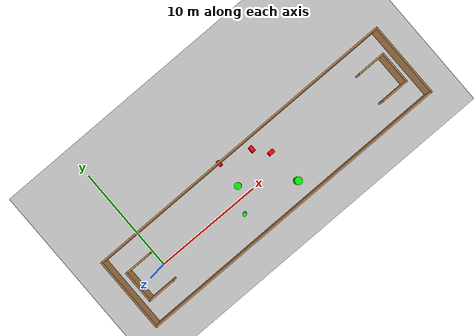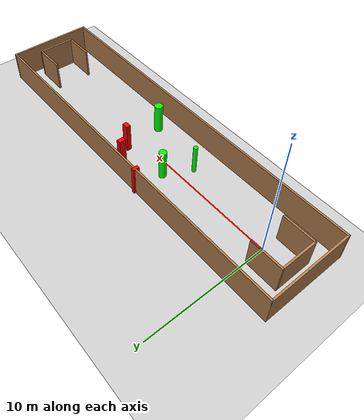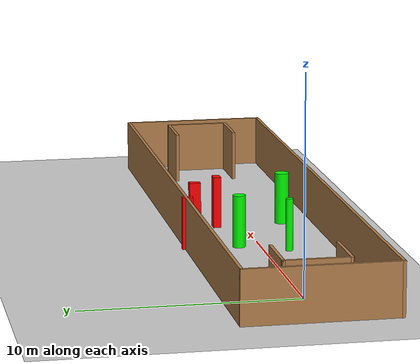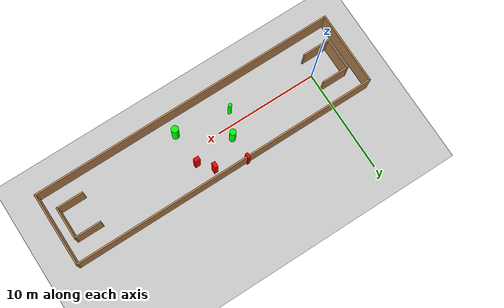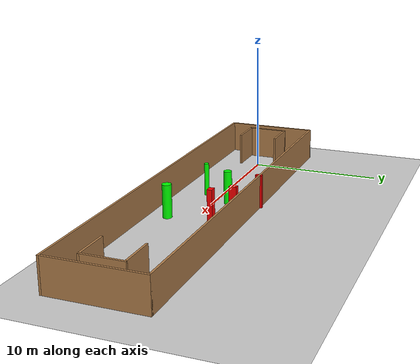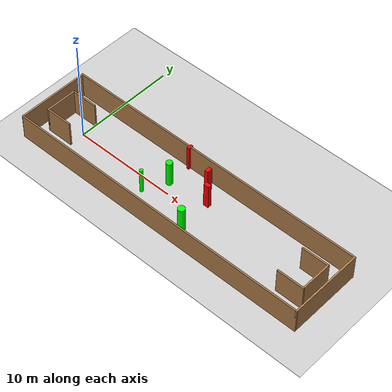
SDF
<sdf version="1.7">
 <world name="default">
  <light name="sun" type="directional">
   <pose>0 0 10 0 -0 0</pose>
   <diffuse>0.8 0.8 0.8 1</diffuse>
   <specular>0.2 0.2 0.2 1</specular>
   <attenuation>
    <range>1000</range>
    <constant>0.9</constant>
    <linear>0.01</linear>
    <quadratic>0.001</quadratic>
   </attenuation>
   <direction>-0.5 0.1 -0.9</direction>
   <spot><inner_angle>0</inner_angle><outer_angle>0</outer_angle><falloff>0</falloff></spot>
  </light>
  <model name="ground_plane">
   <static>1</static>
   <link name="link">
    <collision name="collision">
     <geometry><plane><normal>0 0 1</normal><size>100 100</size></plane></geometry>
     <surface>
      <contact><collide_bitmask>65535</collide_bitmask></contact>
      <friction><ode><mu>100</mu><mu2>50</mu2></ode></friction>
     </surface>
    </collision>
    <visual name="visual">
     <cast_shadows>0</cast_shadows>
     <geometry><plane><normal>0 0 1</normal><size>100 100</size></plane></geometry>
     <material>
      <script><uri>file://media/materials/scripts/gazebo.material</uri><name>Gazebo/Grey</name></script>
     </material>
    </visual>
   </link>
  </model>
  <gravity>0 0 -9.8</gravity>
  <magnetic_field>6e-06 2.3e-05 -4.2e-05</magnetic_field>
  <atmosphere type="adiabatic"/>
  <physics type="ode">
   <max_step_size>0.001</max_step_size>
   <real_time_factor>1</real_time_factor>
   <real_time_update_rate>1000</real_time_update_rate>
  </physics>
  <scene><ambient>0.4 0.4 0.4 1</ambient><background>0.7 0.7 0.7 1</background><shadows>1</shadows></scene>
  <spherical_coordinates>
   <surface_model>EARTH_WGS84</surface_model>
   <latitude_deg>0</latitude_deg>
   <longitude_deg>0</longitude_deg>
   <elevation>0</elevation>
   <heading_deg>0</heading_deg>
  </spherical_coordinates>
  <model name="my_base_walls">
   <link name="Wall_0">
    <collision name="Wall_0_Collision">
     <geometry><box><size>7.15 0.15 2.5</size></box></geometry>
     <pose>0 0 1.25 0 -0 0</pose>
    </collision>
    <visual name="Wall_0_Visual">
     <pose>0 0 1.25 0 -0 0</pose>
     <geometry><box><size>7.15 0.15 2.5</size></box></geometry>
     <material>
      <script><uri>file://media/materials/scripts/gazebo.material</uri><name>Gazebo/Wood</name></script>
      <ambient>1 1 1 1</ambient>
     </material>
     <meta><layer>0</layer></meta>
    </visual>
    <pose>-15 0 0 0 -0 1.5708</pose>
   </link>
   <link name="Wall_10">
    <collision name="Wall_10_Collision">
     <geometry><box><size>2.65 0.15 2.5</size></box></geometry>
     <pose>0 0 1.25 0 -0 0</pose>
    </collision>
    <visual name="Wall_10_Visual">
     <pose>0 0 1.25 0 -0 0</pose>
     <geometry><box><size>2.65 0.15 2.5</size></box></geometry>
     <material>
      <script><uri>file://media/materials/scripts/gazebo.material</uri><name>Gazebo/Wood</name></script>
      <ambient>1 1 1 1</ambient>
     </material>
     <meta><layer>0</layer></meta>
    </visual>
    <pose>-12.75 -1.5 0 0 -0 0</pose>
   </link>
   <link name="Wall_12">
    <collision name="Wall_12_Collision">
     <geometry><box><size>2.65 0.15 2.5</size></box></geometry>
     <pose>0 0 1.25 0 -0 0</pose>
    </collision>
    <visual name="Wall_12_Visual">
     <pose>0 0 1.25 0 -0 0</pose>
     <geometry><box><size>2.65 0.15 2.5</size></box></geometry>
     <material>
      <script><uri>file://media/materials/scripts/gazebo.material</uri><name>Gazebo/Wood</name></script>
      <ambient>1 1 1 1</ambient>
     </material>
     <meta><layer>0</layer></meta>
    </visual>
    <pose>-12.75 1.5 0 0 -0 0</pose>
   </link>
   <link name="Wall_14">
    <collision name="Wall_14_Collision">
     <geometry><box><size>3.15 0.15 2.5</size></box></geometry>
     <pose>0 0 1.25 0 -0 0</pose>
    </collision>
    <visual name="Wall_14_Visual">
     <pose>0 0 1.25 0 -0 0</pose>
     <geometry><box><size>3.15 0.15 2.5</size></box></geometry>
     <material>
      <script><uri>file://media/materials/scripts/gazebo.material</uri><name>Gazebo/Wood</name></script>
      <ambient>1 1 1 1</ambient>
     </material>
     <meta><layer>0</layer></meta>
    </visual>
    <pose>14 0 0 0 -0 -1.5708</pose>
   </link>
   <link name="Wall_15">
    <collision name="Wall_15_Collision">
     <geometry><box><size>2.65 0.15 2.5</size></box></geometry>
     <pose>0 0 1.25 0 -0 0</pose>
    </collision>
    <visual name="Wall_15_Visual">
     <pose>0 0 1.25 0 -0 0</pose>
     <geometry><box><size>2.65 0.15 2.5</size></box></geometry>
     <material>
      <script><uri>file://media/materials/scripts/gazebo.material</uri><name>Gazebo/Wood</name></script>
      <ambient>1 1 1 1</ambient>
     </material>
     <meta><layer>0</layer></meta>
    </visual>
    <pose>12.75 -1.5 0 0 -0 3.14159</pose>
   </link>
   <link name="Wall_17">
    <collision name="Wall_17_Collision">
     <geometry><box><size>2.65 0.15 2.5</size></box></geometry>
     <pose>0 0 1.25 0 -0 0</pose>
    </collision>
    <visual name="Wall_17_Visual">
     <pose>0 0 1.25 0 -0 0</pose>
     <geometry><box><size>2.65 0.15 2.5</size></box></geometry>
     <material>
      <script><uri>file://media/materials/scripts/gazebo.material</uri><name>Gazebo/Wood</name></script>
      <ambient>1 1 1 1</ambient>
     </material>
     <meta><layer>0</layer></meta>
    </visual>
    <pose>12.75 1.5 0 0 -0 3.14159</pose>
   </link>
   <link name="Wall_2">
    <collision name="Wall_2_Collision">
     <geometry><box><size>30.15 0.15 2.5</size></box></geometry>
     <pose>0 0 1.25 0 -0 0</pose>
    </collision>
    <visual name="Wall_2_Visual">
     <pose>0 0 1.25 0 -0 0</pose>
     <geometry><box><size>30.15 0.15 2.5</size></box></geometry>
     <material>
      <script><uri>file://media/materials/scripts/gazebo.material</uri><name>Gazebo/Wood</name></script>
      <ambient>1 1 1 1</ambient>
     </material>
     <meta><layer>0</layer></meta>
    </visual>
    <pose>-0 -3.5 0 0 -0 0</pose>
   </link>
   <link name="Wall_4">
    <collision name="Wall_4_Collision">
     <geometry><box><size>30.15 0.15 2.5</size></box></geometry>
     <pose>0 0 1.25 0 -0 0</pose>
    </collision>
    <visual name="Wall_4_Visual">
     <pose>0 0 1.25 0 -0 0</pose>
     <geometry><box><size>30.15 0.15 2.5</size></box></geometry>
     <material>
      <script><uri>file://media/materials/scripts/gazebo.material</uri><name>Gazebo/Wood</name></script>
      <ambient>1 1 1 1</ambient>
     </material>
     <meta><layer>0</layer></meta>
    </visual>
    <pose>-0 3.5 0 0 -0 0</pose>
   </link>
   <link name="Wall_6">
    <collision name="Wall_6_Collision">
     <geometry><box><size>7.15 0.15 2.5</size></box></geometry>
     <pose>0 0 1.25 0 -0 0</pose>
    </collision>
    <visual name="Wall_6_Visual">
     <pose>0 0 1.25 0 -0 0</pose>
     <geometry><box><size>7.15 0.15 2.5</size></box></geometry>
     <material>
      <script><uri>file://media/materials/scripts/gazebo.material</uri><name>Gazebo/Wood</name></script>
      <ambient>1 1 1 1</ambient>
     </material>
     <meta><layer>0</layer></meta>
    </visual>
    <pose>15 0 0 0 -0 -1.5708</pose>
   </link>
   <link name="Wall_9">
    <collision name="Wall_9_Collision">
     <geometry><box><size>3.15 0.15 2.5</size></box></geometry>
     <pose>0 0 1.25 0 -0 0</pose>
    </collision>
    <visual name="Wall_9_Visual">
     <pose>0 0 1.25 0 -0 0</pose>
     <geometry><box><size>3.15 0.15 2.5</size></box></geometry>
     <material>
      <script><uri>file://media/materials/scripts/gazebo.material</uri><name>Gazebo/Wood</name></script>
      <ambient>1 1 1 1</ambient>
     </material>
     <meta><layer>0</layer></meta>
    </visual>
    <pose>-14 0 0 0 -0 -1.5708</pose>
   </link>
   <static>1</static>
   <pose>11.5 0 0 0 -0 0</pose>
  </model>
  <model name="cylinder1">
   <static>1</static>
   <link name="link">
    <inertial>
     <mass>1</mass>
     <inertia><ixx>0.5</ixx><ixy>0</ixy><ixz>0</ixz><iyy>0.5</iyy><iyz>0</iyz><izz>1</izz></inertia>
    </inertial>
    <collision name="collision">
     <geometry><cylinder><radius>0.174413039719188</radius><length>2.5</length></cylinder></geometry>
    </collision>
    <visual name="visual">
     <geometry><cylinder><radius>0.174413039719188</radius><length>2.5</length></cylinder></geometry>
     <material>
      <ambient>0 1 0 1</ambient>
      <diffuse>0 1 0 1</diffuse>
      <specular>0.1 0.1 0.1 1</specular>
      <emissive>0 0 0 0</emissive>
     </material>
    </visual>
   </link>
   <pose>8.119852926619945 -1.1723057429183856 1.25 0 0 0</pose>
  </model>
  <model name="cylinder2">
   <static>1</static>
   <link name="link">
    <inertial>
     <mass>1</mass>
     <inertia><ixx>0.5</ixx><ixy>0</ixy><ixz>0</ixz><iyy>0.5</iyy><iyz>0</iyz><izz>1</izz></inertia>
    </inertial>
    <collision name="collision">
     <geometry><cylinder><radius>0.30246004641780777</radius><length>2.5</length></cylinder></geometry>
    </collision>
    <visual name="visual">
     <geometry><cylinder><radius>0.30246004641780777</radius><length>2.5</length></cylinder></geometry>
     <material>
      <ambient>0 1 0 1</ambient>
      <diffuse>0 1 0 1</diffuse>
      <specular>0.1 0.1 0.1 1</specular>
      <emissive>0 0 0 0</emissive>
     </material>
    </visual>
   </link>
   <pose>9.22344272454109 1.0005755606017193 1.25 0 0 0</pose>
  </model>
  <model name="cylinder3">
   <static>1</static>
   <link name="link">
    <inertial>
     <mass>1</mass>
     <inertia><ixx>0.5</ixx><ixy>0</ixy><ixz>0</ixz><iyy>0.5</iyy><iyz>0</iyz><izz>1</izz></inertia>
    </inertial>
    <collision name="collision">
     <geometry><cylinder><radius>0.3403916167301001</radius><length>2.5</length></cylinder></geometry>
    </collision>
    <visual name="visual">
     <geometry><cylinder><radius>0.3403916167301001</radius><length>2.5</length></cylinder></geometry>
     <material>
      <ambient>0 1 0 1</ambient>
      <diffuse>0 1 0 1</diffuse>
      <specular>0.1 0.1 0.1 1</specular>
      <emissive>0 0 0 0</emissive>
     </material>
    </visual>
   </link>
   <pose>13.342540676555334 -1.9593964461175912 1.25 0 0 0</pose>
  </model>
  <model name="box1">
   <static>1</static>
   <link name="link">
    <inertial>
     <mass>1</mass>
     <inertia><ixx>0.083</ixx><ixy>0</ixy><ixz>0</ixz><iyy>0.083</iyy><iyz>0</iyz><izz>0.083</izz></inertia>
    </inertial>
    <collision name="collision">
     <geometry><box><size>0.36425201088611964 0.5414595526072031 2.5</size></box></geometry>
    </collision>
    <visual name="visual">
     <geometry><box><size>0.36425201088611964 0.5414595526072031 2.5</size></box></geometry>
     <material>
      <ambient>1 0 0 1</ambient>
      <diffuse>1 0 0 1</diffuse>
      <specular>0.1 0.1 0.1 1</specular>
      <emissive>0 0 0 0</emissive>
     </material>
    </visual>
    <sensor name="my_contact" type="contact">
     <contact><collision>box_collision</collision><topic>__default_topic__</topic></contact>
    </sensor>
   </link>
   <pose>12.111613907680326 2.587313178109077 1.25 0 0 0</pose>
  </model>
  <model name="box2">
   <static>1</static>
   <link name="link">
    <inertial>
     <mass>1</mass>
     <inertia><ixx>0.083</ixx><ixy>0</ixy><ixz>0</ixz><iyy>0.083</iyy><iyz>0</iyz><izz>0.083</izz></inertia>
    </inertial>
    <collision name="collision">
     <geometry><box><size>0.26859985855344526 0.506188446557022 2.5</size></box></geometry>
    </collision>
    <visual name="visual">
     <geometry><box><size>0.26859985855344526 0.506188446557022 2.5</size></box></geometry>
     <material>
      <ambient>1 0 0 1</ambient>
      <diffuse>1 0 0 1</diffuse>
      <specular>0.1 0.1 0.1 1</specular>
      <emissive>0 0 0 0</emissive>
     </material>
    </visual>
    <sensor name="my_contact" type="contact">
     <contact><collision>box_collision</collision><topic>__default_topic__</topic></contact>
    </sensor>
   </link>
   <pose>9.261356984546406 3.4510748036035963 1.25 0 0 0</pose>
  </model>
  <model name="box3">
   <static>1</static>
   <link name="link">
    <inertial>
     <mass>1</mass>
     <inertia><ixx>0.083</ixx><ixy>0</ixy><ixz>0</ixz><iyy>0.083</iyy><iyz>0</iyz><izz>0.083</izz></inertia>
    </inertial>
    <collision name="collision">
     <geometry><box><size>0.5199067722020367 0.3705201829348404 2.5</size></box></geometry>
    </collision>
    <visual name="visual">
     <geometry><box><size>0.5199067722020367 0.3705201829348404 2.5</size></box></geometry>
     <material>
      <ambient>1 0 0 1</ambient>
      <diffuse>1 0 0 1</diffuse>
      <specular>0.1 0.1 0.1 1</specular>
      <emissive>0 0 0 0</emissive>
     </material>
    </visual>
    <sensor name="my_contact" type="contact">
     <contact><collision>box_collision</collision><topic>__default_topic__</topic></contact>
    </sensor>
   </link>
   <pose>13.162465700372064 1.3229940861637726 1.25 0 0 0</pose>
  </model>
 </world>
</sdf>
